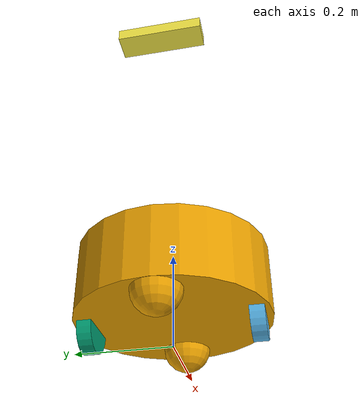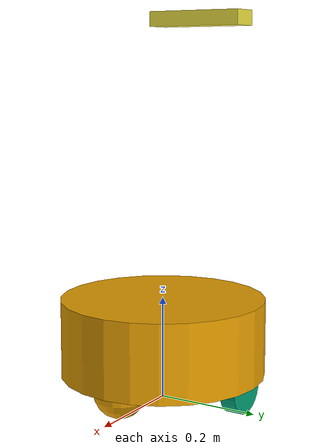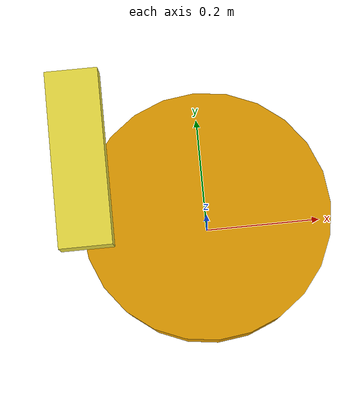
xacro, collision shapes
<?xml version="1.0"?>
<robot name="arips" xmlns:xacro="http://www.ros.org/wiki/xacro">
    <xacro:property name="PI" value="3.1415926535897931"/>
    <xacro:property name="base_height" value="0.15"/>
    <xacro:property name="base_above_ground" value="0.05"/>
    <xacro:property name="base_radius" value="0.2"/>
    <xacro:property name="wheel_base" value="0.34"/>
    <xacro:property name="wheel_thick" value="0.03"/>
    <xacro:property name="wheel_radius" value="0.05"/>
    <xacro:property name="front_wheel_gap" value="0.003"/>
    <xacro:property name="wheel_damping_factor" value="0.2"/>

    <xacro:property name="camera_name" value="kinect"/>

    <gazebo>
        <plugin name="differential_drive_controller" filename="libgazebo_ros_diff_drive.so">
            <alwaysOn>true</alwaysOn>
            <updateRate>50</updateRate>
            <leftJoint>left_wheel_joint</leftJoint>
            <rightJoint>right_wheel_joint</rightJoint>
            <wheelSeparation>${wheel_base}</wheelSeparation>
            <wheelDiameter>${wheel_radius*2}</wheelDiameter>
            <torque>5</torque>
            <commandTopic>cmd_vel</commandTopic>
            <odometryTopic>odom</odometryTopic>
            <odometryFrame>odom</odometryFrame>
            <robotBaseFrame>arips_base</robotBaseFrame>
            <publishWheelTF>true</publishWheelTF>
            <publishTf>false</publishTf>
            <legacyMode>false</legacyMode>

            <odometrySource>encoder</odometrySource>
        </plugin>
    </gazebo>

    <gazebo>
        <plugin name="gazebo_ros_control" filename="libgazebo_ros_control.so">
            <robotNamespace>/arips</robotNamespace>
        </plugin>
    </gazebo>

    <gazebo reference="arips_base">
        <sensor type="ray" name="lidar_sensor">
        <pose>0 0 0.2 0 0 0</pose>
        <visualize>false</visualize>
        <update_rate>8</update_rate>
        <ray>
            <scan>
            <horizontal>
                <samples>360</samples>
                <resolution>1</resolution>
                <min_angle>${-PI}</min_angle>
                <max_angle>${PI}</max_angle>
            </horizontal>
            </scan>
            <range>
            <min>0.21</min>
            <max>15.0</max>
            <resolution>0.01</resolution>
            </range>
            <noise>
            <type>gaussian</type>
            <mean>0.0</mean>
            <stddev>0.02</stddev>
            </noise>
        </ray>
        <plugin name="gazebo_ros_lidar_controller" filename="libgazebo_ros_laser.so">
            <topicName>/scan</topicName>
            <frameName>arips_base</frameName>
        </plugin>
        </sensor>
    </gazebo>

      <gazebo reference="arips_base">
        <mu1>0.0001</mu1>
        <mu2>0.0001</mu2>
    </gazebo>

    <!-- Use slightly different friction for individual wheels to be more realistic -->
    <gazebo reference="left_wheel">
        <mu1>0.81</mu1>
        <mu2>0.81</mu2>
    </gazebo>

    <gazebo reference="right_wheel">
        <mu1>0.81</mu1>
        <mu2>0.81</mu2>
    </gazebo>

    <gazebo reference="kinect_link">
        <sensor name="kinect_camera" type="depth">
            <update_rate>20</update_rate>
            <camera>
            <horizontal_fov>1.047198</horizontal_fov>
            <image>
                <width>320</width>
                <height>240</height>
                <format>R8G8B8</format>
            </image>
            <clip>
                <near>0.04</near>
                <far>25</far>
            </clip>
            </camera>
            <plugin name="kinect_plugin" filename="libgazebo_ros_openni_kinect.so">
            <baseline>0.2</baseline>
            <alwaysOn>true</alwaysOn>
            <updateRate>0</updateRate>
            <cameraName>${camera_name}_ir</cameraName>
            <imageTopicName>/${camera_name}/color/image_raw</imageTopicName>
            <cameraInfoTopicName>/${camera_name}/color/camera_info</cameraInfoTopicName>
            <depthImageTopicName>/${camera_name}/depth/image_raw</depthImageTopicName>
            <depthImageInfoTopicName>/${camera_name}/depth/camera_info</depthImageInfoTopicName>
            <pointCloudTopicName>/${camera_name}/depth/points</pointCloudTopicName>
            <frameName>kinect_link</frameName>
            <pointCloudCutoff>0.5</pointCloudCutoff>
            <pointCloudCutoffMax>3.0</pointCloudCutoffMax>
            <distortionK1>0.00000001</distortionK1>
            <distortionK2>0.00000001</distortionK2>
            <distortionK3>0.00000001</distortionK3>
            <distortionT1>0.00000001</distortionT1>
            <distortionT2>0.00000001</distortionT2>
            <CxPrime>0</CxPrime>
            <Cx>0</Cx>
            <Cy>0</Cy>
            <focalLength>0</focalLength>
            <hackBaseline>0</hackBaseline>
            </plugin>
        </sensor>
    </gazebo>

  <link name="arips_base">

    <visual>

      <geometry>
        <mesh filename="package://arips_description/models/robot_body.dae" />
      </geometry>
      <origin rpy="0 0 -1.57075"/>
    </visual>

    <collision>
        <geometry>
            <cylinder radius="${base_radius}" length="${base_height}"/>
        </geometry>
        <origin xyz="0 0 ${base_height/2 + base_above_ground}" rpy="0 0 0"/>
    </collision>

    <collision>
        <geometry>
            <sphere radius="${wheel_radius}"/>
        </geometry>
        <origin xyz="${-base_radius + wheel_radius + 0.001} 0 ${wheel_radius}" rpy="0 0 0"/>
    </collision>

    <collision>
        <geometry>
            <sphere radius="${wheel_radius}"/>
        </geometry>
        <origin xyz="${base_radius - wheel_radius - 0.001} 0 ${wheel_radius + front_wheel_gap}" rpy="0 0 0"/>
    </collision>

    <inertial>
      <origin xyz="-0.05 0 ${base_height/2 + base_above_ground}" rpy="0 0 0"/>
      <mass value="1.5"/>
      <inertia ixx="0.01625" ixy="0.0" ixz="0.0" iyy="0.01625" iyz="0.0" izz="0.03"/>
    </inertial>
  </link>

  <link name="right_wheel">

    <collision>
      <origin rpy="0 0 0" xyz="0 0 0"/>
      <geometry>
        <cylinder length="${wheel_thick}" radius="${wheel_radius}"/>
      </geometry>
    </collision>

    <inertial>
      <origin xyz="0 0 0" rpy="0 0 0"/>
      <mass value="0.2"/>
      <inertia ixx="0.0007" ixy="0.0" ixz="0.0" iyy="0.0007" iyz="0.0" izz="0.00125"/>
    </inertial>
  </link>

  <joint name="right_wheel_joint" type="continuous">
    <parent link="arips_base"/>
    <child link="right_wheel"/>
    <axis xyz="0 0 1"/>
    <origin xyz="0 -${wheel_base/2} ${wheel_radius}" rpy="${-PI/2} 0 0"/>

    <dynamics damping="${wheel_damping_factor}"/>
  </joint>

  <link name="left_wheel">

    <collision>
      <origin rpy="0 0 0" xyz="0 0 0"/>
      <geometry>
        <cylinder length="${wheel_thick}" radius="${wheel_radius}"/>
      </geometry>
    </collision>

    <inertial>
      <origin xyz="0 0 0" rpy="0 0 0"/>
      <mass value="0.2"/>
      <inertia ixx="0.0007" ixy="0.0" ixz="0.0" iyy="0.0007" iyz="0.0" izz="0.00125"/>
    </inertial>
  </link>

  <joint name="left_wheel_joint" type="continuous">
    <parent link="arips_base"/>
    <child link="left_wheel"/>
    <axis xyz="0 0 1"/>
    <origin xyz="0 ${wheel_base/2} ${wheel_radius}" rpy="${-PI/2} 0 0"/>

    <dynamics damping="${wheel_damping_factor}"/>
  </joint>

  <link name="kinect_link">
    <visual>
      <geometry>
        <mesh filename="package://arips_description/models/robot_kinect.dae" />
      </geometry>
    </visual>

    <collision>
      <origin rpy="0 0 0" xyz="0 0 0"/>
      <geometry>
        <box size="0.06 0.2 0.03"/>
      </geometry>
    </collision>

    <inertial>
      <origin xyz="0 0 0" rpy="0 0 0"/>
      <mass value="0.2"/>
      <inertia ixx="0.0007" ixy="0.0" ixz="0.0" iyy="0.0007" iyz="0.0" izz="0.00125"/>
    </inertial>
  </link>

  <joint name="kinect_joint" type="revolute">
    <limit effort="10.0" lower="-1" upper="1" velocity="0.2"/>
    <parent link="arips_base"/>
    <child link="kinect_link"/>
    <origin xyz="-0.14 0 0.74" rpy="0 0 0"/>
    <axis xyz="0 1 0" />

    <dynamics damping="0.07"/>
  </joint>

  <transmission name="kinect_trans">
    <type>transmission_interface/SimpleTransmission</type>
    <joint name="kinect_joint">
      <hardwareInterface>hardware_interface/EffortJointInterface</hardwareInterface>
    </joint>
    <actuator name="kinect_motor">
      <hardwareInterface>hardware_interface/EffortJointInterface</hardwareInterface>
      <mechanicalReduction>1</mechanicalReduction>
    </actuator>
  </transmission>

</robot>
